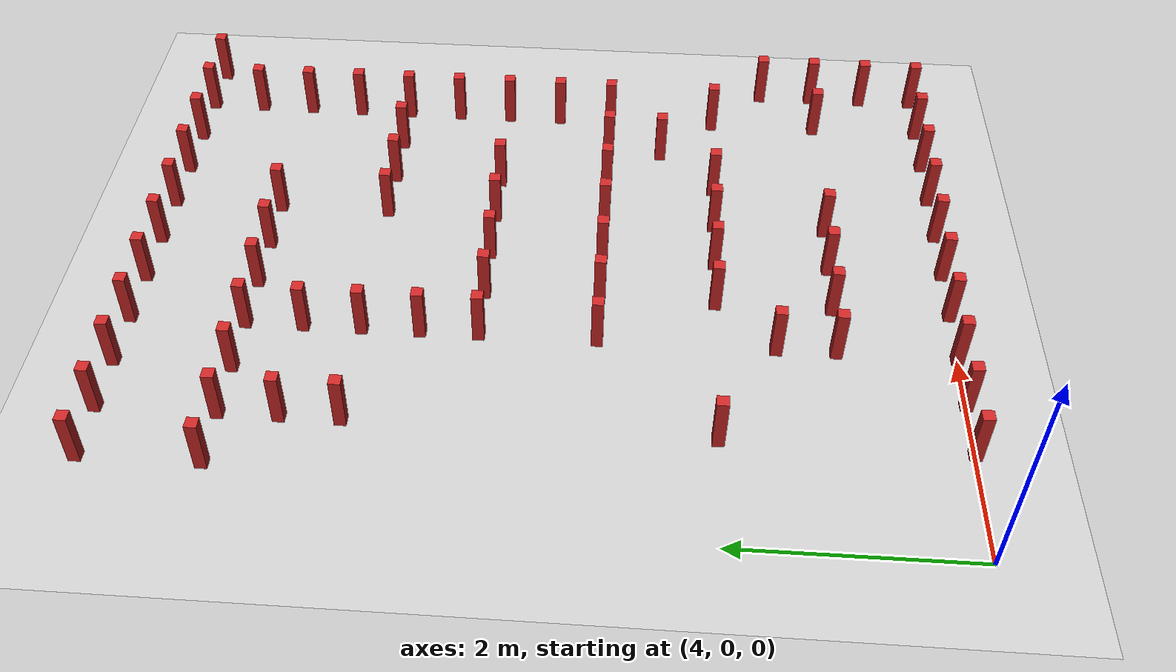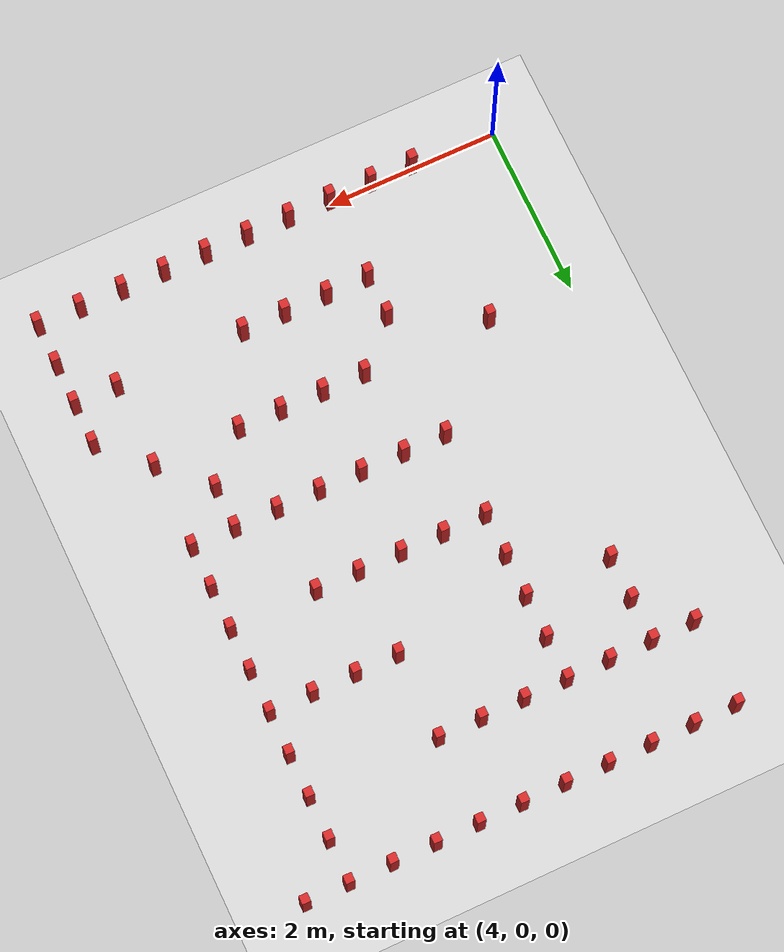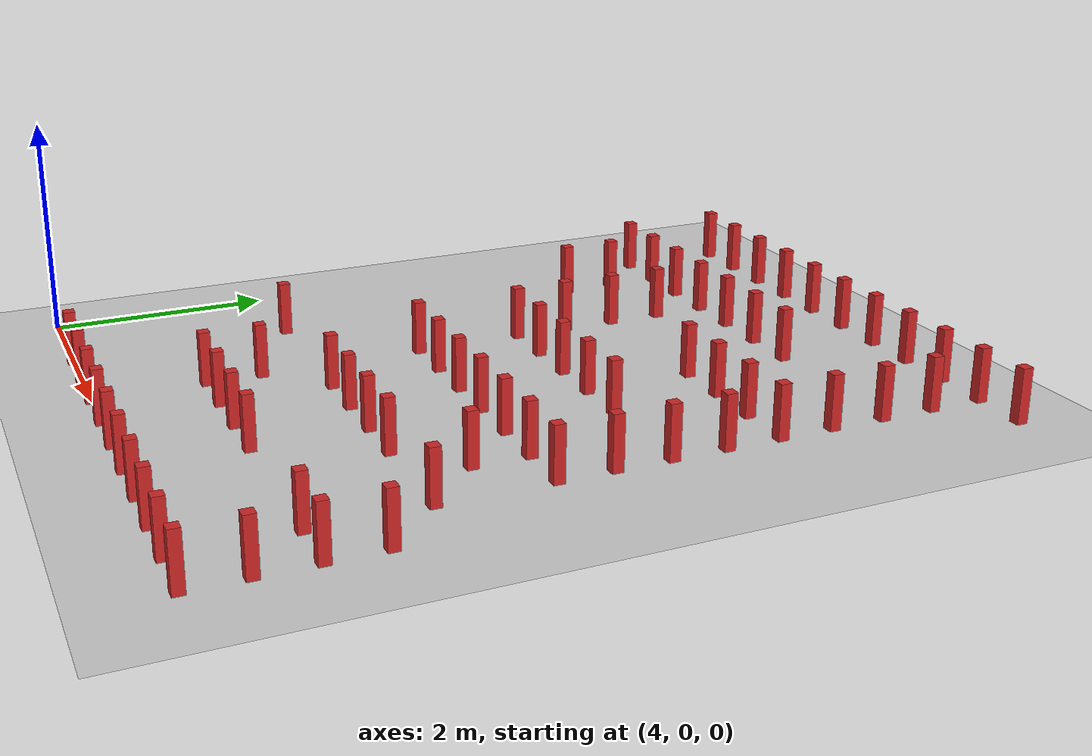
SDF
<sdf version="1.6">
 <world name="maze_assignment">
  <model name="ground_plane">
   <static>true</static>
   <link name="link">
    <collision name="collision">
     <geometry><plane><normal>0 0 1</normal><size>100 100</size></plane></geometry>
    </collision>
    <visual name="visual">
     <geometry><plane><normal>0 0 1</normal><size>100 100</size></plane></geometry>
     <material>
      <ambient>0.8 0.8 0.8 1</ambient>
      <diffuse>0.8 0.8 0.8 1</diffuse>
      <specular>0.8 0.8 0.8 1</specular>
     </material>
    </visual>
   </link>
  </model>
  <model name="maze_wall_10">
   <static>true</static>
   <link name="link">
    <collision name="collision"><geometry><box><size>0.1 0.1 0.5</size></box></geometry></collision>
    <visual name="visual">
     <geometry><box><size>0.1 0.1 0.5</size></box></geometry>
     <material>
      <script><uri>file://media/materials/scripts/gazebo.material</uri><name>Gazebo/Red</name></script>
     </material>
    </visual>
   </link>
   <pose>5.0 0.0 0.25 0 0 0</pose>
  </model>
  <model name="maze_wall_11">
   <static>true</static>
   <link name="link">
    <collision name="collision"><geometry><box><size>0.1 0.1 0.5</size></box></geometry></collision>
    <visual name="visual">
     <geometry><box><size>0.1 0.1 0.5</size></box></geometry>
     <material>
      <script><uri>file://media/materials/scripts/gazebo.material</uri><name>Gazebo/Red</name></script>
     </material>
    </visual>
   </link>
   <pose>5.5 0.0 0.25 0 0 0</pose>
  </model>
  <model name="maze_wall_12">
   <static>true</static>
   <link name="link">
    <collision name="collision"><geometry><box><size>0.1 0.1 0.5</size></box></geometry></collision>
    <visual name="visual">
     <geometry><box><size>0.1 0.1 0.5</size></box></geometry>
     <material>
      <script><uri>file://media/materials/scripts/gazebo.material</uri><name>Gazebo/Red</name></script>
     </material>
    </visual>
   </link>
   <pose>6.0 0.0 0.25 0 0 0</pose>
  </model>
  <model name="maze_wall_13">
   <static>true</static>
   <link name="link">
    <collision name="collision"><geometry><box><size>0.1 0.1 0.5</size></box></geometry></collision>
    <visual name="visual">
     <geometry><box><size>0.1 0.1 0.5</size></box></geometry>
     <material>
      <script><uri>file://media/materials/scripts/gazebo.material</uri><name>Gazebo/Red</name></script>
     </material>
    </visual>
   </link>
   <pose>6.5 0.0 0.25 0 0 0</pose>
  </model>
  <model name="maze_wall_14">
   <static>true</static>
   <link name="link">
    <collision name="collision"><geometry><box><size>0.1 0.1 0.5</size></box></geometry></collision>
    <visual name="visual">
     <geometry><box><size>0.1 0.1 0.5</size></box></geometry>
     <material>
      <script><uri>file://media/materials/scripts/gazebo.material</uri><name>Gazebo/Red</name></script>
     </material>
    </visual>
   </link>
   <pose>7.0 0.0 0.25 0 0 0</pose>
  </model>
  <model name="maze_wall_15">
   <static>true</static>
   <link name="link">
    <collision name="collision"><geometry><box><size>0.1 0.1 0.5</size></box></geometry></collision>
    <visual name="visual">
     <geometry><box><size>0.1 0.1 0.5</size></box></geometry>
     <material>
      <script><uri>file://media/materials/scripts/gazebo.material</uri><name>Gazebo/Red</name></script>
     </material>
    </visual>
   </link>
   <pose>7.5 0.0 0.25 0 0 0</pose>
  </model>
  <model name="maze_wall_16">
   <static>true</static>
   <link name="link">
    <collision name="collision"><geometry><box><size>0.1 0.1 0.5</size></box></geometry></collision>
    <visual name="visual">
     <geometry><box><size>0.1 0.1 0.5</size></box></geometry>
     <material>
      <script><uri>file://media/materials/scripts/gazebo.material</uri><name>Gazebo/Red</name></script>
     </material>
    </visual>
   </link>
   <pose>8.0 0.0 0.25 0 0 0</pose>
  </model>
  <model name="maze_wall_17">
   <static>true</static>
   <link name="link">
    <collision name="collision"><geometry><box><size>0.1 0.1 0.5</size></box></geometry></collision>
    <visual name="visual">
     <geometry><box><size>0.1 0.1 0.5</size></box></geometry>
     <material>
      <script><uri>file://media/materials/scripts/gazebo.material</uri><name>Gazebo/Red</name></script>
     </material>
    </visual>
   </link>
   <pose>8.5 0.0 0.25 0 0 0</pose>
  </model>
  <model name="maze_wall_18">
   <static>true</static>
   <link name="link">
    <collision name="collision"><geometry><box><size>0.1 0.1 0.5</size></box></geometry></collision>
    <visual name="visual">
     <geometry><box><size>0.1 0.1 0.5</size></box></geometry>
     <material>
      <script><uri>file://media/materials/scripts/gazebo.material</uri><name>Gazebo/Red</name></script>
     </material>
    </visual>
   </link>
   <pose>9.0 0.0 0.25 0 0 0</pose>
  </model>
  <model name="maze_wall_19">
   <static>true</static>
   <link name="link">
    <collision name="collision"><geometry><box><size>0.1 0.1 0.5</size></box></geometry></collision>
    <visual name="visual">
     <geometry><box><size>0.1 0.1 0.5</size></box></geometry>
     <material>
      <script><uri>file://media/materials/scripts/gazebo.material</uri><name>Gazebo/Red</name></script>
     </material>
    </visual>
   </link>
   <pose>9.5 0.0 0.25 0 0 0</pose>
  </model>
  <model name="maze_wall_22">
   <static>true</static>
   <link name="link">
    <collision name="collision"><geometry><box><size>0.1 0.1 0.5</size></box></geometry></collision>
    <visual name="visual">
     <geometry><box><size>0.1 0.1 0.5</size></box></geometry>
     <material>
      <script><uri>file://media/materials/scripts/gazebo.material</uri><name>Gazebo/Red</name></script>
     </material>
    </visual>
   </link>
   <pose>9.5 0.5 0.25 0 0 0</pose>
  </model>
  <model name="maze_wall_29">
   <static>true</static>
   <link name="link">
    <collision name="collision"><geometry><box><size>0.1 0.1 0.5</size></box></geometry></collision>
    <visual name="visual">
     <geometry><box><size>0.1 0.1 0.5</size></box></geometry>
     <material>
      <script><uri>file://media/materials/scripts/gazebo.material</uri><name>Gazebo/Red</name></script>
     </material>
    </visual>
   </link>
   <pose>6.0 1.0 0.25 0 0 0</pose>
  </model>
  <model name="maze_wall_30">
   <static>true</static>
   <link name="link">
    <collision name="collision"><geometry><box><size>0.1 0.1 0.5</size></box></geometry></collision>
    <visual name="visual">
     <geometry><box><size>0.1 0.1 0.5</size></box></geometry>
     <material>
      <script><uri>file://media/materials/scripts/gazebo.material</uri><name>Gazebo/Red</name></script>
     </material>
    </visual>
   </link>
   <pose>6.5 1.0 0.25 0 0 0</pose>
  </model>
  <model name="maze_wall_31">
   <static>true</static>
   <link name="link">
    <collision name="collision"><geometry><box><size>0.1 0.1 0.5</size></box></geometry></collision>
    <visual name="visual">
     <geometry><box><size>0.1 0.1 0.5</size></box></geometry>
     <material>
      <script><uri>file://media/materials/scripts/gazebo.material</uri><name>Gazebo/Red</name></script>
     </material>
    </visual>
   </link>
   <pose>7.0 1.0 0.25 0 0 0</pose>
  </model>
  <model name="maze_wall_32">
   <static>true</static>
   <link name="link">
    <collision name="collision"><geometry><box><size>0.1 0.1 0.5</size></box></geometry></collision>
    <visual name="visual">
     <geometry><box><size>0.1 0.1 0.5</size></box></geometry>
     <material>
      <script><uri>file://media/materials/scripts/gazebo.material</uri><name>Gazebo/Red</name></script>
     </material>
    </visual>
   </link>
   <pose>7.5 1.0 0.25 0 0 0</pose>
  </model>
  <model name="maze_wall_33">
   <static>true</static>
   <link name="link">
    <collision name="collision"><geometry><box><size>0.1 0.1 0.5</size></box></geometry></collision>
    <visual name="visual">
     <geometry><box><size>0.1 0.1 0.5</size></box></geometry>
     <material>
      <script><uri>file://media/materials/scripts/gazebo.material</uri><name>Gazebo/Red</name></script>
     </material>
    </visual>
   </link>
   <pose>9.0 1.0 0.25 0 0 0</pose>
  </model>
  <model name="maze_wall_34">
   <static>true</static>
   <link name="link">
    <collision name="collision"><geometry><box><size>0.1 0.1 0.5</size></box></geometry></collision>
    <visual name="visual">
     <geometry><box><size>0.1 0.1 0.5</size></box></geometry>
     <material>
      <script><uri>file://media/materials/scripts/gazebo.material</uri><name>Gazebo/Red</name></script>
     </material>
    </visual>
   </link>
   <pose>9.5 1.0 0.25 0 0 0</pose>
  </model>
  <model name="maze_wall_37">
   <static>true</static>
   <link name="link">
    <collision name="collision"><geometry><box><size>0.1 0.1 0.5</size></box></geometry></collision>
    <visual name="visual">
     <geometry><box><size>0.1 0.1 0.5</size></box></geometry>
     <material>
      <script><uri>file://media/materials/scripts/gazebo.material</uri><name>Gazebo/Red</name></script>
     </material>
    </visual>
   </link>
   <pose>6.0 1.5 0.25 0 0 0</pose>
  </model>
  <model name="maze_wall_38">
   <static>true</static>
   <link name="link">
    <collision name="collision"><geometry><box><size>0.1 0.1 0.5</size></box></geometry></collision>
    <visual name="visual">
     <geometry><box><size>0.1 0.1 0.5</size></box></geometry>
     <material>
      <script><uri>file://media/materials/scripts/gazebo.material</uri><name>Gazebo/Red</name></script>
     </material>
    </visual>
   </link>
   <pose>9.5 1.5 0.25 0 0 0</pose>
  </model>
  <model name="maze_wall_45">
   <static>true</static>
   <link name="link">
    <collision name="collision"><geometry><box><size>0.1 0.1 0.5</size></box></geometry></collision>
    <visual name="visual">
     <geometry><box><size>0.1 0.1 0.5</size></box></geometry>
     <material>
      <script><uri>file://media/materials/scripts/gazebo.material</uri><name>Gazebo/Red</name></script>
     </material>
    </visual>
   </link>
   <pose>5.0 2.0 0.25 0 0 0</pose>
  </model>
  <model name="maze_wall_46">
   <static>true</static>
   <link name="link">
    <collision name="collision"><geometry><box><size>0.1 0.1 0.5</size></box></geometry></collision>
    <visual name="visual">
     <geometry><box><size>0.1 0.1 0.5</size></box></geometry>
     <material>
      <script><uri>file://media/materials/scripts/gazebo.material</uri><name>Gazebo/Red</name></script>
     </material>
    </visual>
   </link>
   <pose>6.5 2.0 0.25 0 0 0</pose>
  </model>
  <model name="maze_wall_47">
   <static>true</static>
   <link name="link">
    <collision name="collision"><geometry><box><size>0.1 0.1 0.5</size></box></geometry></collision>
    <visual name="visual">
     <geometry><box><size>0.1 0.1 0.5</size></box></geometry>
     <material>
      <script><uri>file://media/materials/scripts/gazebo.material</uri><name>Gazebo/Red</name></script>
     </material>
    </visual>
   </link>
   <pose>7.0 2.0 0.25 0 0 0</pose>
  </model>
  <model name="maze_wall_48">
   <static>true</static>
   <link name="link">
    <collision name="collision"><geometry><box><size>0.1 0.1 0.5</size></box></geometry></collision>
    <visual name="visual">
     <geometry><box><size>0.1 0.1 0.5</size></box></geometry>
     <material>
      <script><uri>file://media/materials/scripts/gazebo.material</uri><name>Gazebo/Red</name></script>
     </material>
    </visual>
   </link>
   <pose>7.5 2.0 0.25 0 0 0</pose>
  </model>
  <model name="maze_wall_49">
   <static>true</static>
   <link name="link">
    <collision name="collision"><geometry><box><size>0.1 0.1 0.5</size></box></geometry></collision>
    <visual name="visual">
     <geometry><box><size>0.1 0.1 0.5</size></box></geometry>
     <material>
      <script><uri>file://media/materials/scripts/gazebo.material</uri><name>Gazebo/Red</name></script>
     </material>
    </visual>
   </link>
   <pose>8.0 2.0 0.25 0 0 0</pose>
  </model>
  <model name="maze_wall_50">
   <static>true</static>
   <link name="link">
    <collision name="collision"><geometry><box><size>0.1 0.1 0.5</size></box></geometry></collision>
    <visual name="visual">
     <geometry><box><size>0.1 0.1 0.5</size></box></geometry>
     <material>
      <script><uri>file://media/materials/scripts/gazebo.material</uri><name>Gazebo/Red</name></script>
     </material>
    </visual>
   </link>
   <pose>9.0 2.0 0.25 0 0 0</pose>
  </model>
  <model name="maze_wall_54">
   <static>true</static>
   <link name="link">
    <collision name="collision"><geometry><box><size>0.1 0.1 0.5</size></box></geometry></collision>
    <visual name="visual">
     <geometry><box><size>0.1 0.1 0.5</size></box></geometry>
     <material>
      <script><uri>file://media/materials/scripts/gazebo.material</uri><name>Gazebo/Red</name></script>
     </material>
    </visual>
   </link>
   <pose>8.5 2.5 0.25 0 0 0</pose>
  </model>
  <model name="maze_wall_62">
   <static>true</static>
   <link name="link">
    <collision name="collision"><geometry><box><size>0.1 0.1 0.5</size></box></geometry></collision>
    <visual name="visual">
     <geometry><box><size>0.1 0.1 0.5</size></box></geometry>
     <material>
      <script><uri>file://media/materials/scripts/gazebo.material</uri><name>Gazebo/Red</name></script>
     </material>
    </visual>
   </link>
   <pose>6.0 3.0 0.25 0 0 0</pose>
  </model>
  <model name="maze_wall_63">
   <static>true</static>
   <link name="link">
    <collision name="collision"><geometry><box><size>0.1 0.1 0.5</size></box></geometry></collision>
    <visual name="visual">
     <geometry><box><size>0.1 0.1 0.5</size></box></geometry>
     <material>
      <script><uri>file://media/materials/scripts/gazebo.material</uri><name>Gazebo/Red</name></script>
     </material>
    </visual>
   </link>
   <pose>6.5 3.0 0.25 0 0 0</pose>
  </model>
  <model name="maze_wall_64">
   <static>true</static>
   <link name="link">
    <collision name="collision"><geometry><box><size>0.1 0.1 0.5</size></box></geometry></collision>
    <visual name="visual">
     <geometry><box><size>0.1 0.1 0.5</size></box></geometry>
     <material>
      <script><uri>file://media/materials/scripts/gazebo.material</uri><name>Gazebo/Red</name></script>
     </material>
    </visual>
   </link>
   <pose>7.0 3.0 0.25 0 0 0</pose>
  </model>
  <model name="maze_wall_65">
   <static>true</static>
   <link name="link">
    <collision name="collision"><geometry><box><size>0.1 0.1 0.5</size></box></geometry></collision>
    <visual name="visual">
     <geometry><box><size>0.1 0.1 0.5</size></box></geometry>
     <material>
      <script><uri>file://media/materials/scripts/gazebo.material</uri><name>Gazebo/Red</name></script>
     </material>
    </visual>
   </link>
   <pose>7.5 3.0 0.25 0 0 0</pose>
  </model>
  <model name="maze_wall_66">
   <static>true</static>
   <link name="link">
    <collision name="collision"><geometry><box><size>0.1 0.1 0.5</size></box></geometry></collision>
    <visual name="visual">
     <geometry><box><size>0.1 0.1 0.5</size></box></geometry>
     <material>
      <script><uri>file://media/materials/scripts/gazebo.material</uri><name>Gazebo/Red</name></script>
     </material>
    </visual>
   </link>
   <pose>8.0 3.0 0.25 0 0 0</pose>
  </model>
  <model name="maze_wall_67">
   <static>true</static>
   <link name="link">
    <collision name="collision"><geometry><box><size>0.1 0.1 0.5</size></box></geometry></collision>
    <visual name="visual">
     <geometry><box><size>0.1 0.1 0.5</size></box></geometry>
     <material>
      <script><uri>file://media/materials/scripts/gazebo.material</uri><name>Gazebo/Red</name></script>
     </material>
    </visual>
   </link>
   <pose>8.5 3.0 0.25 0 0 0</pose>
  </model>
  <model name="maze_wall_68">
   <static>true</static>
   <link name="link">
    <collision name="collision"><geometry><box><size>0.1 0.1 0.5</size></box></geometry></collision>
    <visual name="visual">
     <geometry><box><size>0.1 0.1 0.5</size></box></geometry>
     <material>
      <script><uri>file://media/materials/scripts/gazebo.material</uri><name>Gazebo/Red</name></script>
     </material>
    </visual>
   </link>
   <pose>9.0 3.0 0.25 0 0 0</pose>
  </model>
  <model name="maze_wall_71">
   <static>true</static>
   <link name="link">
    <collision name="collision"><geometry><box><size>0.1 0.1 0.5</size></box></geometry></collision>
    <visual name="visual">
     <geometry><box><size>0.1 0.1 0.5</size></box></geometry>
     <material>
      <script><uri>file://media/materials/scripts/gazebo.material</uri><name>Gazebo/Red</name></script>
     </material>
    </visual>
   </link>
   <pose>9.0 3.5 0.25 0 0 0</pose>
  </model>
  <model name="maze_wall_80">
   <static>true</static>
   <link name="link">
    <collision name="collision"><geometry><box><size>0.1 0.1 0.5</size></box></geometry></collision>
    <visual name="visual">
     <geometry><box><size>0.1 0.1 0.5</size></box></geometry>
     <material>
      <script><uri>file://media/materials/scripts/gazebo.material</uri><name>Gazebo/Red</name></script>
     </material>
    </visual>
   </link>
   <pose>6.0 4.0 0.25 0 0 0</pose>
  </model>
  <model name="maze_wall_81">
   <static>true</static>
   <link name="link">
    <collision name="collision"><geometry><box><size>0.1 0.1 0.5</size></box></geometry></collision>
    <visual name="visual">
     <geometry><box><size>0.1 0.1 0.5</size></box></geometry>
     <material>
      <script><uri>file://media/materials/scripts/gazebo.material</uri><name>Gazebo/Red</name></script>
     </material>
    </visual>
   </link>
   <pose>6.5 4.0 0.25 0 0 0</pose>
  </model>
  <model name="maze_wall_82">
   <static>true</static>
   <link name="link">
    <collision name="collision"><geometry><box><size>0.1 0.1 0.5</size></box></geometry></collision>
    <visual name="visual">
     <geometry><box><size>0.1 0.1 0.5</size></box></geometry>
     <material>
      <script><uri>file://media/materials/scripts/gazebo.material</uri><name>Gazebo/Red</name></script>
     </material>
    </visual>
   </link>
   <pose>7.0 4.0 0.25 0 0 0</pose>
  </model>
  <model name="maze_wall_83">
   <static>true</static>
   <link name="link">
    <collision name="collision"><geometry><box><size>0.1 0.1 0.5</size></box></geometry></collision>
    <visual name="visual">
     <geometry><box><size>0.1 0.1 0.5</size></box></geometry>
     <material>
      <script><uri>file://media/materials/scripts/gazebo.material</uri><name>Gazebo/Red</name></script>
     </material>
    </visual>
   </link>
   <pose>7.5 4.0 0.25 0 0 0</pose>
  </model>
  <model name="maze_wall_84">
   <static>true</static>
   <link name="link">
    <collision name="collision"><geometry><box><size>0.1 0.1 0.5</size></box></geometry></collision>
    <visual name="visual">
     <geometry><box><size>0.1 0.1 0.5</size></box></geometry>
     <material>
      <script><uri>file://media/materials/scripts/gazebo.material</uri><name>Gazebo/Red</name></script>
     </material>
    </visual>
   </link>
   <pose>8.0 4.0 0.25 0 0 0</pose>
  </model>
  <model name="maze_wall_85">
   <static>true</static>
   <link name="link">
    <collision name="collision"><geometry><box><size>0.1 0.1 0.5</size></box></geometry></collision>
    <visual name="visual">
     <geometry><box><size>0.1 0.1 0.5</size></box></geometry>
     <material>
      <script><uri>file://media/materials/scripts/gazebo.material</uri><name>Gazebo/Red</name></script>
     </material>
    </visual>
   </link>
   <pose>9.0 4.0 0.25 0 0 0</pose>
  </model>
  <model name="maze_wall_87">
   <static>true</static>
   <link name="link">
    <collision name="collision"><geometry><box><size>0.1 0.1 0.5</size></box></geometry></collision>
    <visual name="visual">
     <geometry><box><size>0.1 0.1 0.5</size></box></geometry>
     <material>
      <script><uri>file://media/materials/scripts/gazebo.material</uri><name>Gazebo/Red</name></script>
     </material>
    </visual>
   </link>
   <pose>6.0 4.5 0.25 0 0 0</pose>
  </model>
  <model name="maze_wall_88">
   <static>true</static>
   <link name="link">
    <collision name="collision"><geometry><box><size>0.1 0.1 0.5</size></box></geometry></collision>
    <visual name="visual">
     <geometry><box><size>0.1 0.1 0.5</size></box></geometry>
     <material>
      <script><uri>file://media/materials/scripts/gazebo.material</uri><name>Gazebo/Red</name></script>
     </material>
    </visual>
   </link>
   <pose>9.0 4.5 0.25 0 0 0</pose>
  </model>
  <model name="maze_wall_95">
   <static>true</static>
   <link name="link">
    <collision name="collision"><geometry><box><size>0.1 0.1 0.5</size></box></geometry></collision>
    <visual name="visual">
     <geometry><box><size>0.1 0.1 0.5</size></box></geometry>
     <material>
      <script><uri>file://media/materials/scripts/gazebo.material</uri><name>Gazebo/Red</name></script>
     </material>
    </visual>
   </link>
   <pose>5.0 5.0 0.25 0 0 0</pose>
  </model>
  <model name="maze_wall_96">
   <static>true</static>
   <link name="link">
    <collision name="collision"><geometry><box><size>0.1 0.1 0.5</size></box></geometry></collision>
    <visual name="visual">
     <geometry><box><size>0.1 0.1 0.5</size></box></geometry>
     <material>
      <script><uri>file://media/materials/scripts/gazebo.material</uri><name>Gazebo/Red</name></script>
     </material>
    </visual>
   </link>
   <pose>6.0 5.0 0.25 0 0 0</pose>
  </model>
  <model name="maze_wall_97">
   <static>true</static>
   <link name="link">
    <collision name="collision"><geometry><box><size>0.1 0.1 0.5</size></box></geometry></collision>
    <visual name="visual">
     <geometry><box><size>0.1 0.1 0.5</size></box></geometry>
     <material>
      <script><uri>file://media/materials/scripts/gazebo.material</uri><name>Gazebo/Red</name></script>
     </material>
    </visual>
   </link>
   <pose>7.5 5.0 0.25 0 0 0</pose>
  </model>
  <model name="maze_wall_98">
   <static>true</static>
   <link name="link">
    <collision name="collision"><geometry><box><size>0.1 0.1 0.5</size></box></geometry></collision>
    <visual name="visual">
     <geometry><box><size>0.1 0.1 0.5</size></box></geometry>
     <material>
      <script><uri>file://media/materials/scripts/gazebo.material</uri><name>Gazebo/Red</name></script>
     </material>
    </visual>
   </link>
   <pose>8.0 5.0 0.25 0 0 0</pose>
  </model>
  <model name="maze_wall_99">
   <static>true</static>
   <link name="link">
    <collision name="collision"><geometry><box><size>0.1 0.1 0.5</size></box></geometry></collision>
    <visual name="visual">
     <geometry><box><size>0.1 0.1 0.5</size></box></geometry>
     <material>
      <script><uri>file://media/materials/scripts/gazebo.material</uri><name>Gazebo/Red</name></script>
     </material>
    </visual>
   </link>
   <pose>8.5 5.0 0.25 0 0 0</pose>
  </model>
  <model name="maze_wall_100">
   <static>true</static>
   <link name="link">
    <collision name="collision"><geometry><box><size>0.1 0.1 0.5</size></box></geometry></collision>
    <visual name="visual">
     <geometry><box><size>0.1 0.1 0.5</size></box></geometry>
     <material>
      <script><uri>file://media/materials/scripts/gazebo.material</uri><name>Gazebo/Red</name></script>
     </material>
    </visual>
   </link>
   <pose>9.0 5.0 0.25 0 0 0</pose>
  </model>
  <model name="maze_wall_103">
   <static>true</static>
   <link name="link">
    <collision name="collision"><geometry><box><size>0.1 0.1 0.5</size></box></geometry></collision>
    <visual name="visual">
     <geometry><box><size>0.1 0.1 0.5</size></box></geometry>
     <material>
      <script><uri>file://media/materials/scripts/gazebo.material</uri><name>Gazebo/Red</name></script>
     </material>
    </visual>
   </link>
   <pose>5.0 5.5 0.25 0 0 0</pose>
  </model>
  <model name="maze_wall_104">
   <static>true</static>
   <link name="link">
    <collision name="collision"><geometry><box><size>0.1 0.1 0.5</size></box></geometry></collision>
    <visual name="visual">
     <geometry><box><size>0.1 0.1 0.5</size></box></geometry>
     <material>
      <script><uri>file://media/materials/scripts/gazebo.material</uri><name>Gazebo/Red</name></script>
     </material>
    </visual>
   </link>
   <pose>6.0 5.5 0.25 0 0 0</pose>
  </model>
  <model name="maze_wall_105">
   <static>true</static>
   <link name="link">
    <collision name="collision"><geometry><box><size>0.1 0.1 0.5</size></box></geometry></collision>
    <visual name="visual">
     <geometry><box><size>0.1 0.1 0.5</size></box></geometry>
     <material>
      <script><uri>file://media/materials/scripts/gazebo.material</uri><name>Gazebo/Red</name></script>
     </material>
    </visual>
   </link>
   <pose>9.0 5.5 0.25 0 0 0</pose>
  </model>
  <model name="maze_wall_111">
   <static>true</static>
   <link name="link">
    <collision name="collision"><geometry><box><size>0.1 0.1 0.5</size></box></geometry></collision>
    <visual name="visual">
     <geometry><box><size>0.1 0.1 0.5</size></box></geometry>
     <material>
      <script><uri>file://media/materials/scripts/gazebo.material</uri><name>Gazebo/Red</name></script>
     </material>
    </visual>
   </link>
   <pose>4.5 6.0 0.25 0 0 0</pose>
  </model>
  <model name="maze_wall_112">
   <static>true</static>
   <link name="link">
    <collision name="collision"><geometry><box><size>0.1 0.1 0.5</size></box></geometry></collision>
    <visual name="visual">
     <geometry><box><size>0.1 0.1 0.5</size></box></geometry>
     <material>
      <script><uri>file://media/materials/scripts/gazebo.material</uri><name>Gazebo/Red</name></script>
     </material>
    </visual>
   </link>
   <pose>5.0 6.0 0.25 0 0 0</pose>
  </model>
  <model name="maze_wall_113">
   <static>true</static>
   <link name="link">
    <collision name="collision"><geometry><box><size>0.1 0.1 0.5</size></box></geometry></collision>
    <visual name="visual">
     <geometry><box><size>0.1 0.1 0.5</size></box></geometry>
     <material>
      <script><uri>file://media/materials/scripts/gazebo.material</uri><name>Gazebo/Red</name></script>
     </material>
    </visual>
   </link>
   <pose>5.5 6.0 0.25 0 0 0</pose>
  </model>
  <model name="maze_wall_114">
   <static>true</static>
   <link name="link">
    <collision name="collision"><geometry><box><size>0.1 0.1 0.5</size></box></geometry></collision>
    <visual name="visual">
     <geometry><box><size>0.1 0.1 0.5</size></box></geometry>
     <material>
      <script><uri>file://media/materials/scripts/gazebo.material</uri><name>Gazebo/Red</name></script>
     </material>
    </visual>
   </link>
   <pose>6.0 6.0 0.25 0 0 0</pose>
  </model>
  <model name="maze_wall_115">
   <static>true</static>
   <link name="link">
    <collision name="collision"><geometry><box><size>0.1 0.1 0.5</size></box></geometry></collision>
    <visual name="visual">
     <geometry><box><size>0.1 0.1 0.5</size></box></geometry>
     <material>
      <script><uri>file://media/materials/scripts/gazebo.material</uri><name>Gazebo/Red</name></script>
     </material>
    </visual>
   </link>
   <pose>6.5 6.0 0.25 0 0 0</pose>
  </model>
  <model name="maze_wall_116">
   <static>true</static>
   <link name="link">
    <collision name="collision"><geometry><box><size>0.1 0.1 0.5</size></box></geometry></collision>
    <visual name="visual">
     <geometry><box><size>0.1 0.1 0.5</size></box></geometry>
     <material>
      <script><uri>file://media/materials/scripts/gazebo.material</uri><name>Gazebo/Red</name></script>
     </material>
    </visual>
   </link>
   <pose>7.0 6.0 0.25 0 0 0</pose>
  </model>
  <model name="maze_wall_117">
   <static>true</static>
   <link name="link">
    <collision name="collision"><geometry><box><size>0.1 0.1 0.5</size></box></geometry></collision>
    <visual name="visual">
     <geometry><box><size>0.1 0.1 0.5</size></box></geometry>
     <material>
      <script><uri>file://media/materials/scripts/gazebo.material</uri><name>Gazebo/Red</name></script>
     </material>
    </visual>
   </link>
   <pose>7.5 6.0 0.25 0 0 0</pose>
  </model>
  <model name="maze_wall_118">
   <static>true</static>
   <link name="link">
    <collision name="collision"><geometry><box><size>0.1 0.1 0.5</size></box></geometry></collision>
    <visual name="visual">
     <geometry><box><size>0.1 0.1 0.5</size></box></geometry>
     <material>
      <script><uri>file://media/materials/scripts/gazebo.material</uri><name>Gazebo/Red</name></script>
     </material>
    </visual>
   </link>
   <pose>9.0 6.0 0.25 0 0 0</pose>
  </model>
  <model name="maze_wall_121">
   <static>true</static>
   <link name="link">
    <collision name="collision"><geometry><box><size>0.1 0.1 0.5</size></box></geometry></collision>
    <visual name="visual">
     <geometry><box><size>0.1 0.1 0.5</size></box></geometry>
     <material>
      <script><uri>file://media/materials/scripts/gazebo.material</uri><name>Gazebo/Red</name></script>
     </material>
    </visual>
   </link>
   <pose>9.0 6.5 0.25 0 0 0</pose>
  </model>
  <model name="maze_wall_131">
   <static>true</static>
   <link name="link">
    <collision name="collision"><geometry><box><size>0.1 0.1 0.5</size></box></geometry></collision>
    <visual name="visual">
     <geometry><box><size>0.1 0.1 0.5</size></box></geometry>
     <material>
      <script><uri>file://media/materials/scripts/gazebo.material</uri><name>Gazebo/Red</name></script>
     </material>
    </visual>
   </link>
   <pose>4.5 7.0 0.25 0 0 0</pose>
  </model>
  <model name="maze_wall_132">
   <static>true</static>
   <link name="link">
    <collision name="collision"><geometry><box><size>0.1 0.1 0.5</size></box></geometry></collision>
    <visual name="visual">
     <geometry><box><size>0.1 0.1 0.5</size></box></geometry>
     <material>
      <script><uri>file://media/materials/scripts/gazebo.material</uri><name>Gazebo/Red</name></script>
     </material>
    </visual>
   </link>
   <pose>5.0 7.0 0.25 0 0 0</pose>
  </model>
  <model name="maze_wall_133">
   <static>true</static>
   <link name="link">
    <collision name="collision"><geometry><box><size>0.1 0.1 0.5</size></box></geometry></collision>
    <visual name="visual">
     <geometry><box><size>0.1 0.1 0.5</size></box></geometry>
     <material>
      <script><uri>file://media/materials/scripts/gazebo.material</uri><name>Gazebo/Red</name></script>
     </material>
    </visual>
   </link>
   <pose>5.5 7.0 0.25 0 0 0</pose>
  </model>
  <model name="maze_wall_134">
   <static>true</static>
   <link name="link">
    <collision name="collision"><geometry><box><size>0.1 0.1 0.5</size></box></geometry></collision>
    <visual name="visual">
     <geometry><box><size>0.1 0.1 0.5</size></box></geometry>
     <material>
      <script><uri>file://media/materials/scripts/gazebo.material</uri><name>Gazebo/Red</name></script>
     </material>
    </visual>
   </link>
   <pose>6.0 7.0 0.25 0 0 0</pose>
  </model>
  <model name="maze_wall_135">
   <static>true</static>
   <link name="link">
    <collision name="collision"><geometry><box><size>0.1 0.1 0.5</size></box></geometry></collision>
    <visual name="visual">
     <geometry><box><size>0.1 0.1 0.5</size></box></geometry>
     <material>
      <script><uri>file://media/materials/scripts/gazebo.material</uri><name>Gazebo/Red</name></script>
     </material>
    </visual>
   </link>
   <pose>6.5 7.0 0.25 0 0 0</pose>
  </model>
  <model name="maze_wall_136">
   <static>true</static>
   <link name="link">
    <collision name="collision"><geometry><box><size>0.1 0.1 0.5</size></box></geometry></collision>
    <visual name="visual">
     <geometry><box><size>0.1 0.1 0.5</size></box></geometry>
     <material>
      <script><uri>file://media/materials/scripts/gazebo.material</uri><name>Gazebo/Red</name></script>
     </material>
    </visual>
   </link>
   <pose>7.0 7.0 0.25 0 0 0</pose>
  </model>
  <model name="maze_wall_137">
   <static>true</static>
   <link name="link">
    <collision name="collision"><geometry><box><size>0.1 0.1 0.5</size></box></geometry></collision>
    <visual name="visual">
     <geometry><box><size>0.1 0.1 0.5</size></box></geometry>
     <material>
      <script><uri>file://media/materials/scripts/gazebo.material</uri><name>Gazebo/Red</name></script>
     </material>
    </visual>
   </link>
   <pose>7.5 7.0 0.25 0 0 0</pose>
  </model>
  <model name="maze_wall_138">
   <static>true</static>
   <link name="link">
    <collision name="collision"><geometry><box><size>0.1 0.1 0.5</size></box></geometry></collision>
    <visual name="visual">
     <geometry><box><size>0.1 0.1 0.5</size></box></geometry>
     <material>
      <script><uri>file://media/materials/scripts/gazebo.material</uri><name>Gazebo/Red</name></script>
     </material>
    </visual>
   </link>
   <pose>8.0 7.0 0.25 0 0 0</pose>
  </model>
  <model name="maze_wall_139">
   <static>true</static>
   <link name="link">
    <collision name="collision"><geometry><box><size>0.1 0.1 0.5</size></box></geometry></collision>
    <visual name="visual">
     <geometry><box><size>0.1 0.1 0.5</size></box></geometry>
     <material>
      <script><uri>file://media/materials/scripts/gazebo.material</uri><name>Gazebo/Red</name></script>
     </material>
    </visual>
   </link>
   <pose>8.5 7.0 0.25 0 0 0</pose>
  </model>
  <model name="maze_wall_140">
   <static>true</static>
   <link name="link">
    <collision name="collision"><geometry><box><size>0.1 0.1 0.5</size></box></geometry></collision>
    <visual name="visual">
     <geometry><box><size>0.1 0.1 0.5</size></box></geometry>
     <material>
      <script><uri>file://media/materials/scripts/gazebo.material</uri><name>Gazebo/Red</name></script>
     </material>
    </visual>
   </link>
   <pose>9.0 7.0 0.25 0 0 0</pose>
  </model>
  <model name="maze_wall_141">
   <static>true</static>
   <link name="link">
    <collision name="collision"><geometry><box><size>0.1 0.1 0.5</size></box></geometry></collision>
    <visual name="visual">
     <geometry><box><size>0.1 0.1 0.5</size></box></geometry>
     <material>
      <script><uri>file://media/materials/scripts/gazebo.material</uri><name>Gazebo/Red</name></script>
     </material>
    </visual>
   </link>
   <pose>9.5 7.0 0.25 0 0 0</pose>
  </model>
 </world>
</sdf>
